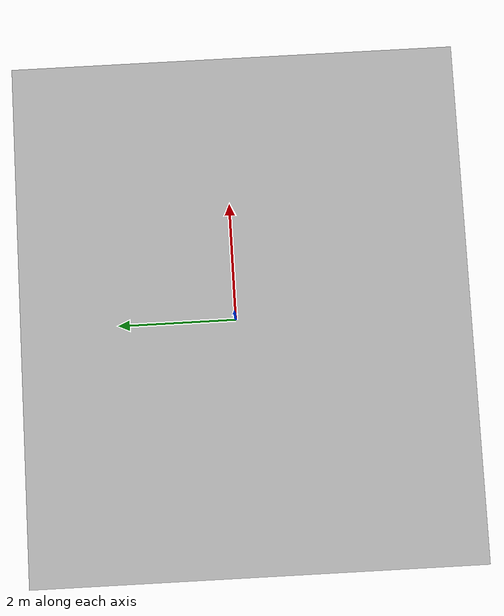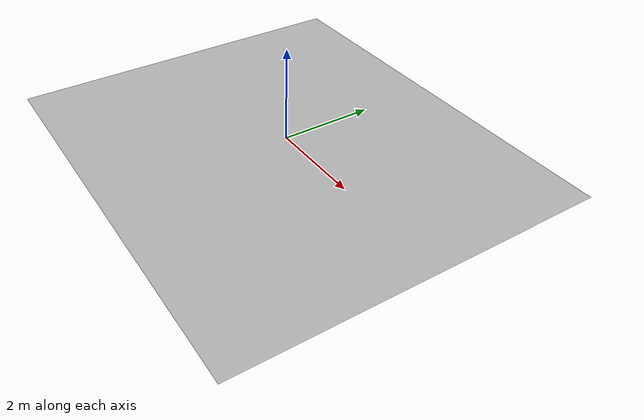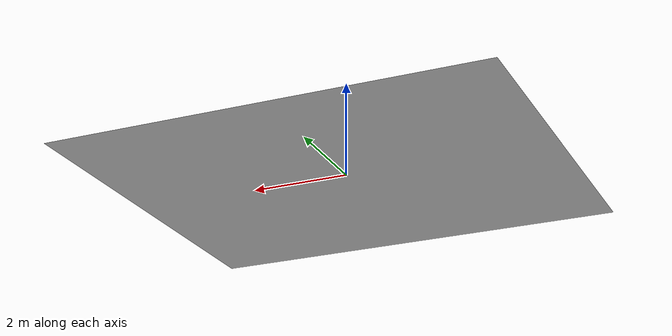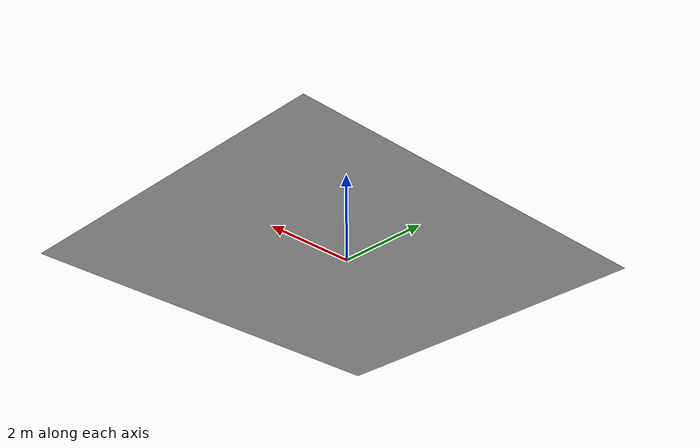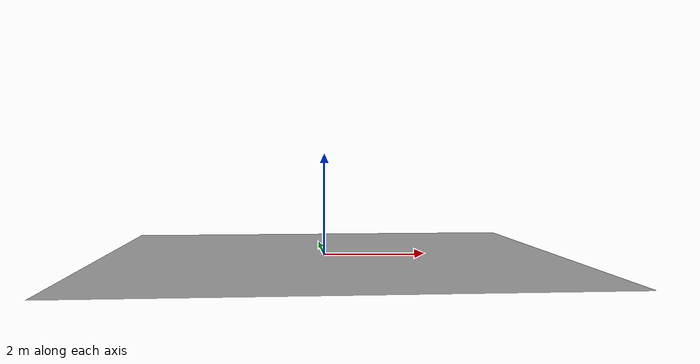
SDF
<?xml version="1.0" ?>

<sdf version="1.4">
    <model name="floor">
        <static> true </static>
        <link name="floor_link">
            <collision name="floor_collision">
                <geometry>
                    <box>
                        <size> 0.3302 0.339725 0.0001 </size>
                    </box>
                </geometry>
            </collision>
            <visual name="floor_mesh">
                <cast_shadows> true </cast_shadows>
                <geometry>
                    <mesh>
                        <uri>model://floor/floor.dae</uri>
                    </mesh>
                </geometry>
            </visual>
        </link>
    </model>
</sdf>
